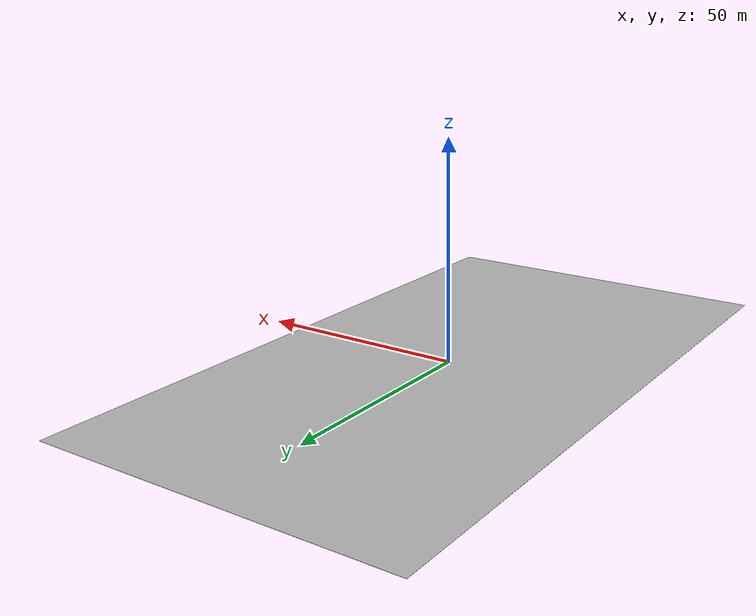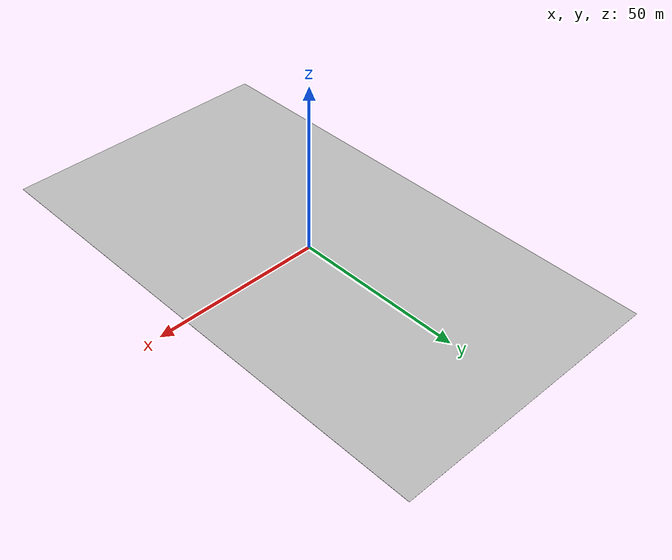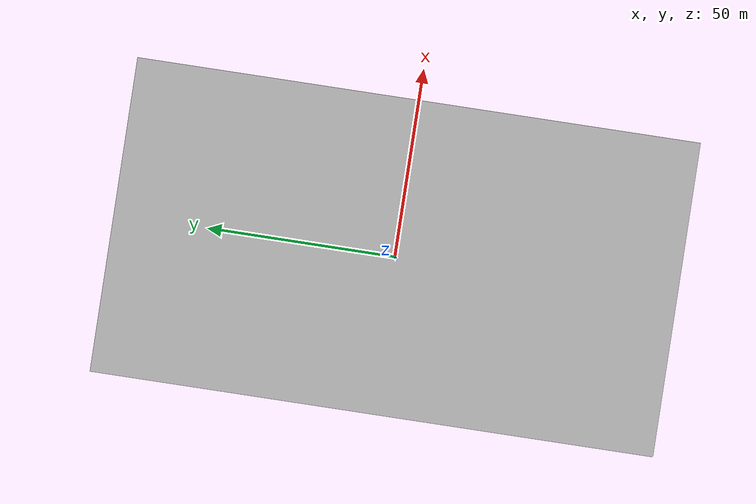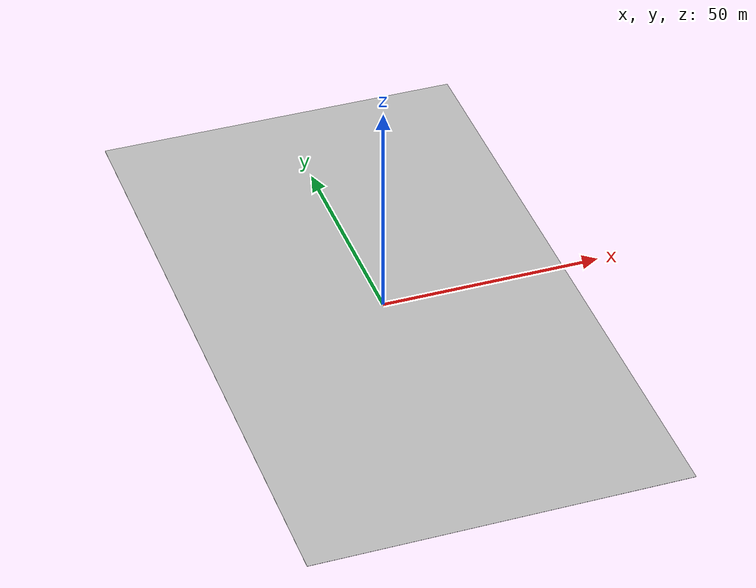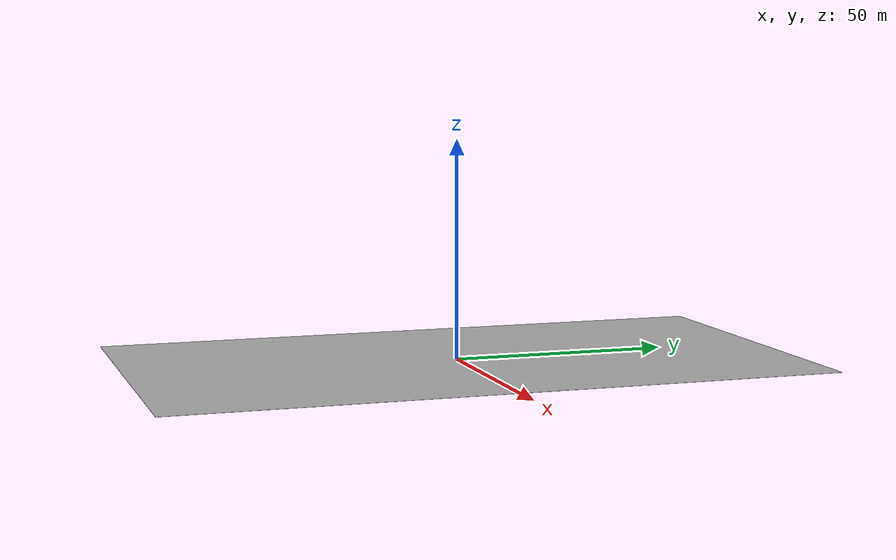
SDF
<?xml version='1.0'?>
<sdf version='1.7'>
  <model name='ground'>
    <link name='ground'>
      <self_collide>0</self_collide>
      <enable_wind>0</enable_wind>
      <kinematic>0</kinematic>
      <pose>0 0 0 0 -0 0</pose>
      <visual name='ground_vis'>
        <geometry>
          <box>
            <size>83.6 150 0.05</size>
          </box>
        </geometry>
        <material>
          <script>
            <uri>/home/yg/ros2/Ros2Projects/oom_ws/install/ros2_term_project/share/ros2_term_project/worlds/./course.material</uri>
            <name>course</name>
          </script>
          <shader type='pixel'/>
        </material>
        <pose>0 0 0 0 -0 0</pose>
        <transparency>0</transparency>
        <cast_shadows>1</cast_shadows>
      </visual>
      <collision name='ground_coll'>
        <laser_retro>0</laser_retro>
        <max_contacts>10</max_contacts>
        <pose>0 0 0 0 -0 0</pose>
        <geometry>
          <box>
            <size>83.6 150 0.05</size>
          </box>
        </geometry>
        <surface>
          <friction>
            <ode>
              <mu>1</mu>
              <mu2>1</mu2>
              <fdir1>0 0 0</fdir1>
              <slip1>0</slip1>
              <slip2>0</slip2>
            </ode>
            <torsional>
              <coefficient>1</coefficient>
              <patch_radius>0</patch_radius>
              <surface_radius>0</surface_radius>
              <use_patch_radius>1</use_patch_radius>
              <ode>
                <slip>0</slip>
              </ode>
            </torsional>
          </friction>
          <bounce>
            <restitution_coefficient>0</restitution_coefficient>
            <threshold>1e+06</threshold>
          </bounce>
          <contact>
            <collide_without_contact>0</collide_without_contact>
            <collide_without_contact_bitmask>1</collide_without_contact_bitmask>
            <collide_bitmask>1</collide_bitmask>
            <ode>
              <soft_cfm>0</soft_cfm>
              <soft_erp>0.2</soft_erp>
              <kp>1e+13</kp>
              <kd>1</kd>
              <max_vel>0.01</max_vel>
              <min_depth>0</min_depth>
            </ode>
            <bullet>
              <split_impulse>1</split_impulse>
              <split_impulse_penetration_threshold>-0.01</split_impulse_penetration_threshold>
              <soft_cfm>0</soft_cfm>
              <soft_erp>0.2</soft_erp>
              <kp>1e+13</kp>
              <kd>1</kd>
            </bullet>
          </contact>
        </surface>
      </collision>
    </link>
    <static>1</static>
    <allow_auto_disable>1</allow_auto_disable>
  </model>
</sdf>
